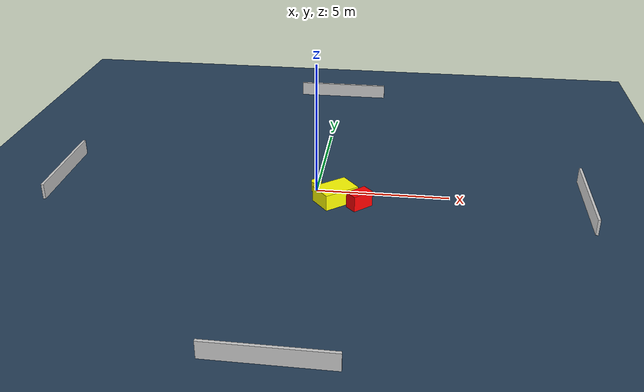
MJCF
<?xml version="1.0" ?>
<mujoco model="generated_environment">
  <option timestep="0.01" integrator="RK4" cone="elliptic"/>
  <default>
    <geom density="1"/>
  </default>
  <asset>
    <texture builtin="gradient" height="3072" name="skybox" rgb1="0.3 0.5 0.7" rgb2="0 0 0" type="skybox" width="512"/>
    <texture builtin="checker" height="300" name="groundplane" rgb1="0.2 0.3 0.4" rgb2="0.1 0.2 0.3" type="2d" width="300"/>
    <material name="groundplane" reflectance="0.2" texrepeat="5 5" texture="groundplane"/>
  </asset>
  <worldbody>
    <light dir="0 0 -1" directional="true" pos="0 0 1.5"/>
    <geom condim="3" friction="0.5 0.005 0.001" material="groundplane" name="floor" pos="0 0 0" size="0 0 0.05" type="plane"/>
    <body name="walls">
      <geom name="wall_1" condim="4" pos="-10.0 0.0 0.3" rgba="0.800000011920929 0.800000011920929 0.800000011920929 1.0" size="0.05 2.0 0.3" type="box"/>
      <geom name="wall_2" condim="4" pos="10.0 0.0 0.3" rgba="0.800000011920929 0.800000011920929 0.800000011920929 1.0" size="0.05 2.0 0.3" type="box"/>
      <geom name="wall_3" condim="4" pos="0.0 -10.0 0.3" rgba="0.800000011920929 0.800000011920929 0.800000011920929 1.0" size="2.0 0.05 0.3" type="box"/>
      <geom name="wall_4" condim="4" pos="0.0 10.0 0.3" rgba="0.800000011920929 0.800000011920929 0.800000011920929 1.0" size="2.0 0.05 0.3" type="box"/>
    </body>
    <body name="robot">
      <joint name="joint_x" type="slide" pos="0 0 0" axis="1 0 0"/>
      <joint name="joint_y" type="slide" pos="0 0 0" axis="0 1 0"/>
      <geom name="robot" type="cylinder" pos="0.0 0.0 0.2" size="0.2 0.2 0.0" mass="5.0" friction="1.0 0.005 0.0001" condim="4" rgba="1.0 1.0 0.0 1.0"/>
    </body>
    <body name="obstacle_1_movable">
      <geom name="obstacle_1_movable" condim="4" pos="0.7974446370298901 -0.7379102884245853 0.3" euler="0 0 39.396126808528614" friction="0.0 0.005 0.001" rgba="1.0 1.0 0.0 1.0" size="0.6953404826158046 0.4633960105598493 0.3" type="box" mass="0.1"/>
      <joint type="free"/>
    </body>
    <body name="obstacle_2_static">
      <geom name="obstacle_2_static" condim="4" pos="1.7110137077933265 -1.0264713304252018 0.3" euler="0 0 43.38720282792344" friction="0.0 0.005 0.001" rgba="1.0 0.0 0.0 1.0" size="0.41754564294914204 0.239313076403469 0.3" type="box"/>
    </body>
  </worldbody>
  <actuator>
    <motor name="actuator_x" joint="joint_x" gear="1" ctrlrange="-1 1"/>
    <motor name="actuator_y" joint="joint_y" gear="1" ctrlrange="-1 1"/>
  </actuator>
</mujoco>
